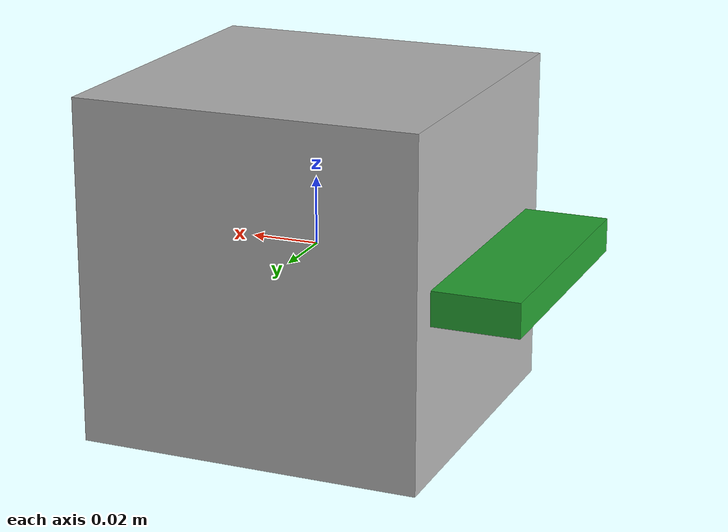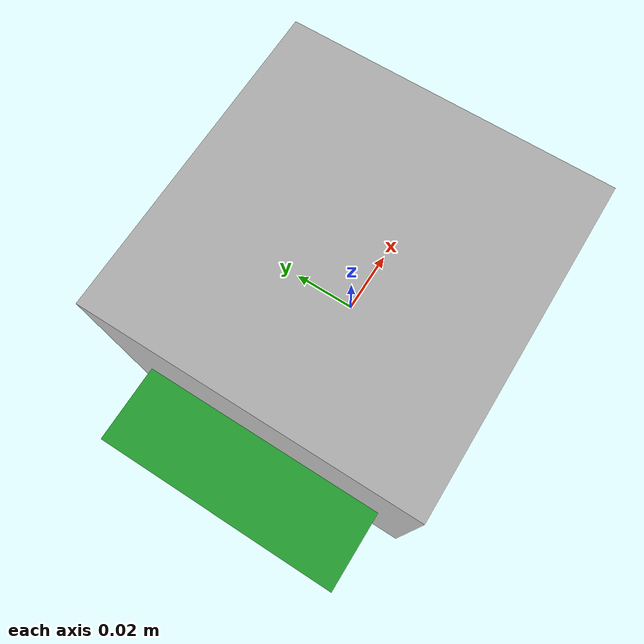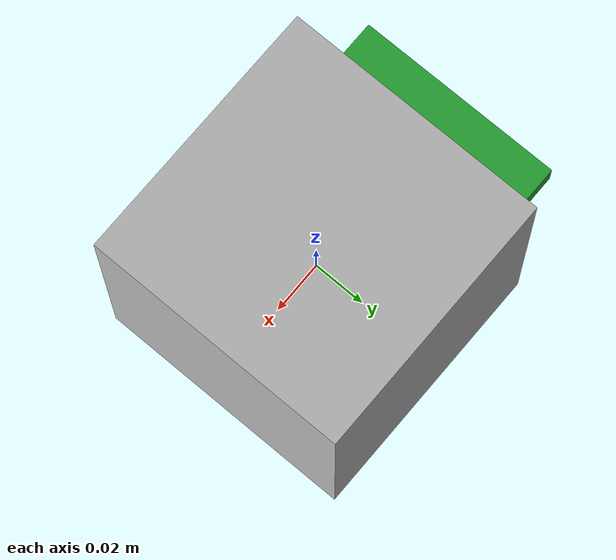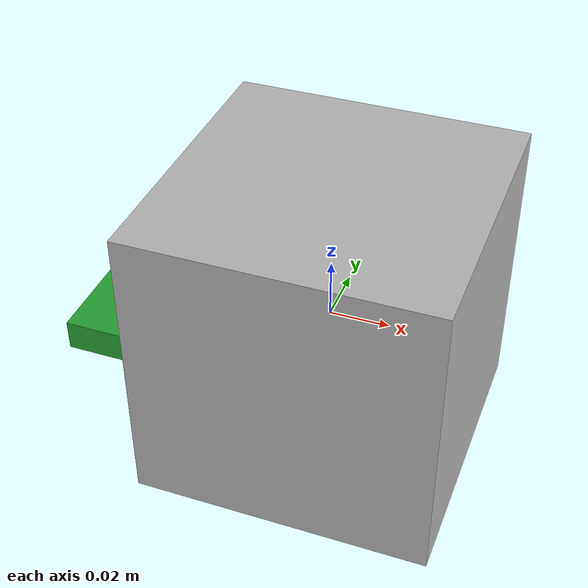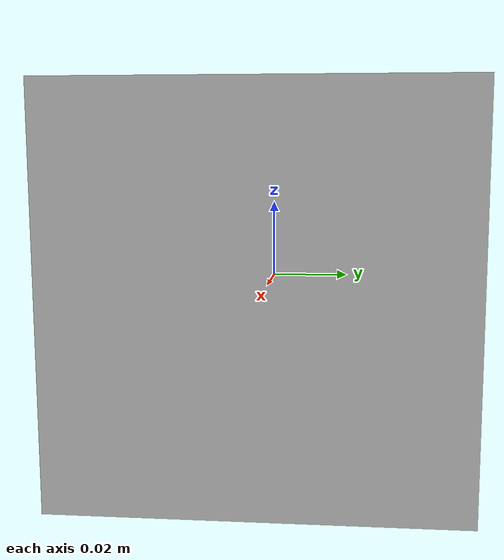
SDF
<?xml version="1.0"?>
<sdf version="1.6">
  <model name="box_apple">
    <link name="box_apple_link">
      <inertial>
        <mass>0.1</mass>
        <inertia>
          <ixx>0.166667</ixx>
          <ixy>0</ixy>
          <ixz>0</ixz>
          <iyy>0.166667</iyy>
          <iyz>0</iyz>
          <izz>0.166667</izz>
        </inertia>
      </inertial>
      <self_collide>0</self_collide>
      <enable_wind>0</enable_wind>
      <kinematic>0</kinematic>
      <collision name="box_apple_collision">
        <pose> 0 0 0 0 0 0</pose>
        <geometry>
          <box>
            <size>0.1 0.1 0.1</size>
          </box>
        </geometry>
      </collision>
      <visual name="box_apple_visual">
        <pose> 0 0 0 0 0 0</pose>
        <geometry>
          <box>
            <size>0.1 0.1 0.1</size>
          </box>
        </geometry>
	<material>
	  <script>
            <uri>model://apple_box/materials/scripts</uri>
	    <uri>model://apple_box/materials/textures</uri>
	    <name>apple_box</name>
          </script>
	</material>
      </visual>

      <collision name="box_holder">
        <pose>-0.06 0.0 0.00 0 0 0</pose>
        <geometry>
          <box>
            <size>0.03 0.08 0.01</size>
          </box>
        </geometry>
      </collision>
      <visual name="box_holder">
        <pose>-0.06 0.0 0.00 0 0 0</pose>
        <geometry>
          <box>
            <size>0.03 0.08 0.01</size>
          </box>
        </geometry>
        <material>
          <script>
            <uri>file://media/materials/scripts/gazebo.material</uri>
            <name>Gazebo/Green</name>
          </script>
        </material>
      </visual>

    </link>
    <static>0</static>
  </model>
</sdf>
